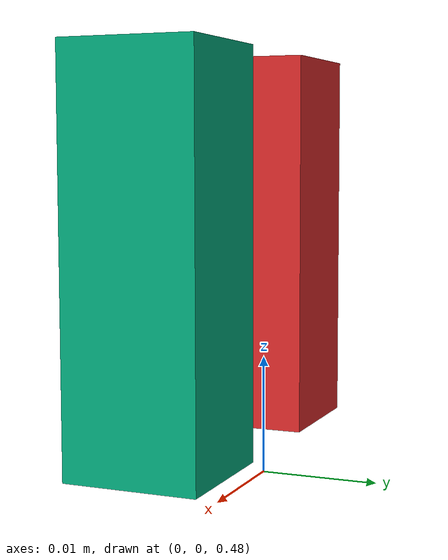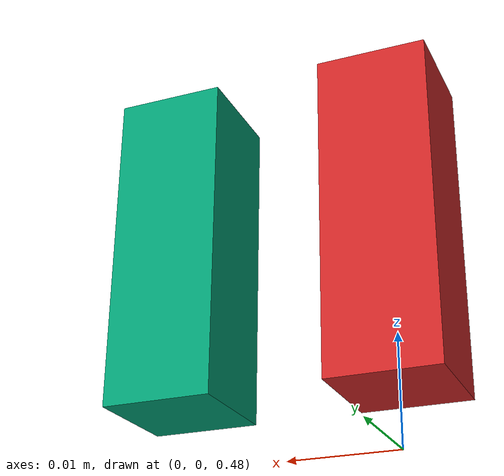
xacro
<?xml version="1.0" ?>
<robot name="stereo_cam" xmlns:xacro="http://www.ros.org/wiki/xacro">

    <!-- Macros -->
    <xacro:property name="GazeboRed"       value="1 0 0 1"/>

    <link name="world">
        <origin xyz="0.0 0.0 0.0"/>
    </link>

    <joint name="world_joint" type="fixed">
        <parent link="world"/>
        <child link="camera_mount"/>
        <origin rpy="0.0 0.0 0.0" xyz="0.0 0.0 0.5"/>
    </joint>
    <link name="camera_mount">
    </link>

    <joint name="right_camera_joint" type="fixed">
        <parent link="camera_mount"/>
        <child link="right_camera_link"/>
        <origin rpy="0.0 1.5708 1.5708" xyz="0.02 0.0 0"/>
    </joint>

    <link name="right_camera_link">
        <visual>
            <origin xyz="0 0 0.0" rpy="0 0 0"/>
            <geometry>
                <box size="0.03 0.01 0.01"/>
            </geometry>
        </visual>

        <inertial>
            <mass value="1e-5" />
            <origin xyz="0 0 0" rpy="0 0 0"/>
            <inertia ixx="1e-6" ixy="0" ixz="0" iyy="1e-6" iyz="0" izz="1e-6" />
        </inertial>
        <!--origin rpy="0.0 0.0 0.0" xyz="0.0 0.2 0.8"/-->
    </link>

    <joint name="left_camera_joint" type="fixed">
        <parent link="camera_mount"/>
        <child link="left_camera_link"/>
        <origin rpy="0.0 1.5708 1.5708" xyz="0 0 0"/>
    </joint>

    <link name="left_camera_link">
        <visual>
            <origin xyz="0 0 0.0" rpy="0 0 0"/>
            <geometry>
                <box size="0.03 0.01 0.01"/>
            </geometry>
        </visual>

        <inertial>
            <mass value="1e-5" />
            <origin xyz="0 0 0" rpy="0 0 0"/>
            <inertia ixx="1e-6" ixy="0" ixz="0" iyy="1e-6" iyz="0" izz="1e-6" />
        </inertial>
        <!--origin rpy="0.0 0.0 0.0" xyz="0.0 0.2 0.8"/-->
    </link>
    <gazebo reference="left_camera_link">
        <material>Gazebo/Red</material>
    </gazebo>

    <link name="left_camera_optical_frame_model">
    </link>
    <link name="left_camera_optical_frame_mid">
    </link>

    <joint name="left_camera_optical_joint_mid" type="fixed">
        <parent link="left_camera_link"/>
        <child link="left_camera_optical_frame_mid"/>
        <origin rpy="0 1.5708 0" xyz="0 0 0"/>
    </joint>

    <joint name="left_camera_optical_joint" type="fixed">
        <parent link="left_camera_optical_frame_mid"/>
        <child link="left_camera_optical_frame_model"/>
        <origin rpy="0 0 -1.5708" xyz="0 0 0"/>
    </joint>
 <!-- repeate for right camera -->
    <link name="right_camera_optical_frame">
    </link>
    <link name="right_camera_optical_frame_mid">
    </link>

    <joint name="right_camera_optical_joint_mid" type="fixed">
        <parent link="right_camera_link"/>
        <child link="right_camera_optical_frame_mid"/>
        <origin rpy="0 1.5708 0" xyz="0 0 0"/>
    </joint>

    <joint name="right_camera_optical_joint" type="fixed">
        <parent link="right_camera_optical_frame_mid"/>
        <child link="right_camera_optical_frame"/>
        <origin rpy="0 0 -1.5708" xyz="0 0 0"/>
    </joint>

    <!-- camera -->
    <gazebo reference="right_camera_link">
        <sensor type="camera" name="right">
            <update_rate>30.0</update_rate>
            <camera name="right">
                <horizontal_fov>0.6</horizontal_fov>
                <image>
                    <width>640</width>
                    <height>480</height>
                    <format>R8G8B8</format>
                </image>
                <clip>
                    <near>0.02</near>
                    <far>0.6</far>
                </clip>
                <noise>
                    <type>gaussian</type>
                    <mean>0.0</mean>
                    <stddev>0.0</stddev>
                </noise>
            </camera>
            <plugin name="right_camera_controller" filename="libgazebo_ros_camera.so">
                <alwaysOn>true</alwaysOn>
                <updateRate>0.0</updateRate>
                <cameraName>stereo_cam/right</cameraName>
                <imageTopicName>image_raw</imageTopicName>
                <cameraInfoTopicName>camera_info</cameraInfoTopicName>
                <frameName>right_camera_optical_frame</frameName>
                <hackBaseline>0.02</hackBaseline>
                <distortionK1>0.0</distortionK1>
                <distortionK2>0.0</distortionK2>
                <distortionK3>0.0</distortionK3>
                <distortionT1>0.0</distortionT1>
                <distortionT2>0.0</distortionT2>
            </plugin>
        </sensor>
    </gazebo>
    <!-- left camera -->
    <gazebo reference="left_camera_link">
        <sensor type="camera" name="left">
            <update_rate>30.0</update_rate>
            <camera name="left">
                <horizontal_fov>0.6</horizontal_fov>
                <image>
                    <width>640</width>
                    <height>480</height>
                    <format>R8G8B8</format>
                </image>
                <clip>
                    <near>0.02</near>
                    <far>0.6</far>
                </clip>
                <noise>
                    <type>gaussian</type>
                    <mean>0.0</mean>
                    <stddev>0.0</stddev>
                </noise>
            </camera>
            <plugin name="left_camera_controller" filename="libgazebo_ros_camera.so">
                <alwaysOn>true</alwaysOn>
                <updateRate>0.0</updateRate>
                <cameraName>stereo_cam/left</cameraName>
                <imageTopicName>image_raw</imageTopicName>
                <cameraInfoTopicName>camera_info</cameraInfoTopicName>
                <!--NOTE: need a transform publisher to relate left_camera_optical_frame to left_camera_optical_frame_model-->
                <frameName>left_camera_optical_frame</frameName>
                <distortionK1>0.0</distortionK1>
                <distortionK2>0.0</distortionK2>
                <distortionK3>0.0</distortionK3>
                <distortionT1>0.0</distortionT1>
                <distortionT2>0.0</distortionT2>
            </plugin>
        </sensor>
    </gazebo>
</robot>
